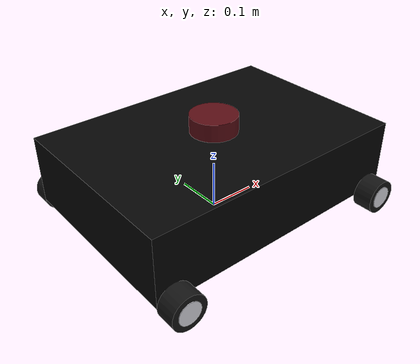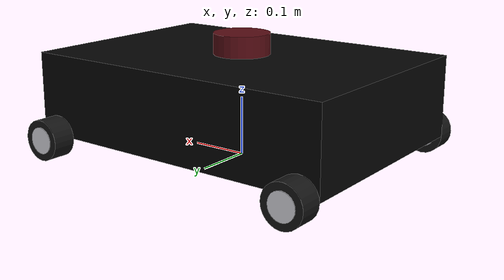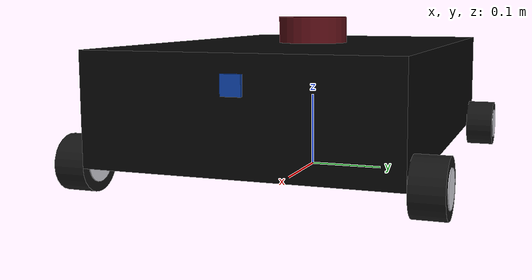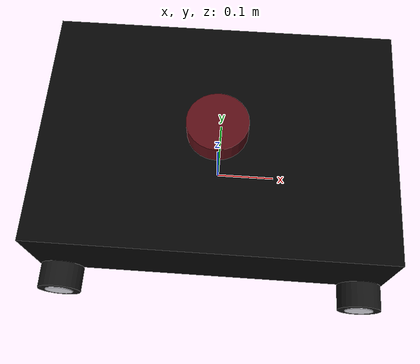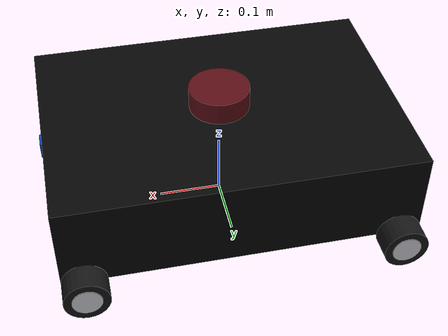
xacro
<?xml version="1.0" ?>
<robot name="robot" xmlns:xacro="http://www.ros.org/wiki/xacro">

<!-- ==================== GEOMETRY AND CONSTANTS ==================== -->
<xacro:property name="pi_const" value="3.14159265"/>

<!-- Body Dimensions -->
<xacro:property name="a" value="0.55663" />   <!-- length (x) -->
<xacro:property name="b" value="0.14044" />   <!-- height (z) -->
<xacro:property name="c" value="0.388"   />   <!-- width  (y) -->

<!-- Wheel Dimensions -->
<xacro:property name="r" value="0.035" />     <!-- wheel radius -->
<xacro:property name="d" value="0.04"  />     <!-- wheel thickness -->

<!-- Offsets -->
<xacro:property name="s1" value="${b/2+r}"/>         <!-- body center z above ground -->
<xacro:property name="s2" value="${a/2-r}"/>         <!-- wheel x offset from body center -->
<xacro:property name="s4" value="${c/2+d/2}"/>       <!-- wheel y offset (left/right) -->

<!-- Camera offsets - Mounted on front face -->
<xacro:property name="camera_x" value="${a/2}"/>           <!-- Front face of rover -->
<xacro:property name="camera_y" value="0"/>                <!-- Centered -->
<xacro:property name="camera_z" value="${b/4}"/>           <!-- Half height of rover -->

<!-- RPLIDAR A1 Dimensions - CORRECTED HEIGHT -->
<xacro:property name="lidar_height" value="0.042"/>        <!-- RPLIDAR A1 height (42mm) -->
<xacro:property name="lidar_radius" value="0.048"/>        <!-- RPLIDAR A1 radius (48mm) -->
<!-- Lidar at 0.15m above base_link to intersect obstacles at z=0.25-0.75 -->
<xacro:property name="lidar_mount_z" value="0.20"/>

<!-- Material Density -->
<xacro:property name="d1" value="2710.0"/>   <!-- body (aluminium) -->
<xacro:property name="d2" value="2710.0"/>   <!-- wheel -->

<!-- Mass -->
<xacro:property name="m1" value="${d1*a*b*c}"/>
<xacro:property name="m2" value="${d2*pi_const*r*r*d}"/>

<!-- Body Inertia -->
<xacro:property name="Ix_body" value="${(1/12)*m1*(b*b+c*c)}"/>
<xacro:property name="Iy_body" value="${(1/12)*m1*(a*a+b*b)}"/>
<xacro:property name="Iz_body" value="${(1/12)*m1*(a*a+c*c)}"/>

<!-- Wheel Inertia -->
<xacro:property name="Iz_wheel" value="${0.5*m2*r*r}"/>
<xacro:property name="I_wheel"  value="${(1.0/12.0)*m2*(3.0*r*r+d*d)}"/>

<!-- PREMIUM COLORS                                                -->
<xacro:property name="body_color" value="0.02 0.02 0.02 1.0"/>           <!-- Deep Black -->
<xacro:property name="body_metallic" value="0.05 0.05 0.05 1.0"/>        <!-- Satin Black -->

<!-- LIDAR - Deep Metallic Burgundy -->
<xacro:property name="lidar_color" value="0.35 0.05 0.08 1.0"/>          <!-- Deep Burgundy -->
<xacro:property name="lidar_top_color" value="0.12 0.12 0.12 1.0"/>      <!-- Dark Gunmetal -->

<!-- CAMERA - Bold Premium Blue -->
<xacro:property name="camera_color" value="0.05 0.25 0.65 1.0"/>         <!-- Bold Premium Blue -->

<!-- WHEELS - Premium Dark Alloy -->
<xacro:property name="wheel_color" value="0.08 0.08 0.08 1.0"/>          <!-- Dark Alloy -->
<xacro:property name="wheel_rim_color" value="0.85 0.85 0.88 1.0"/>      <!-- Premium Silver -->

<!-- Inertia macro: body -->
<xacro:macro name="inertia_body">
    <inertial>
        <origin rpy="0 0 0" xyz="0 0 0"/>
        <mass value="${m1}"/>
        <inertia ixx="${Ix_body}" ixy="0.0" ixz="0.0"
                 iyy="${Iy_body}" iyz="0.0"
                 izz="${Iz_body}"/>
    </inertial>
</xacro:macro>

<!-- Inertia macro: wheel -->
<xacro:macro name="inertia_wheel">
    <inertial>
        <origin rpy="1.5708 0 0" xyz="0 0 0"/>
        <mass value="${m2}"/>
        <inertia ixx="${Iz_wheel}" ixy="0.0" ixz="0.0"
                 iyy="${I_wheel}"  iyz="0.0"
                 izz="${I_wheel}"/>
    </inertial>
</xacro:macro>

<!-- ========== BASE ========== -->
<link name="base_footprint"/>

<joint name="base_joint" type="fixed">
    <parent link="base_footprint"/>
    <child  link="base_link"/>
    <origin xyz="0 0 ${s1}" rpy="0 0 0"/>
</joint>

<!-- ========== BASE LINK ========== -->
<link name="base_link">
    <visual>
        <origin rpy="0 0 0" xyz="0 0 0"/>
        <geometry>
            <box size="${a} ${c} ${b}"/>
        </geometry>
        <material name="body_material">
            <color rgba="${body_color}"/>
        </material>
    </visual>
    <collision>
        <origin rpy="0 0 0" xyz="0 0 0"/>
        <geometry>
            <box size="${a} ${c} ${b}"/>
        </geometry>
    </collision>
    <xacro:inertia_body/>
</link>

<!-- WHEELS                                                         -->

<!-- FRONT LEFT WHEEL -->
<joint name="front_left_wheel_joint" type="continuous">
    <parent link="base_link"/>
    <child  link="front_left_wheel"/>
    <origin xyz="${s2} ${s4} ${-b/2}" rpy="0 0 0"/>
    <axis xyz="0 1 0"/>
    <limit effort="50.0" velocity="10.0"/>
    <dynamics damping="0.1" friction="0.1"/>
</joint>

<link name="front_left_wheel">
    <visual name="tire">
        <origin rpy="1.5708 0 0" xyz="0 0 0"/>
        <geometry>
            <cylinder length="${d}" radius="${r}"/>
        </geometry>
        <material name="wheel_material">
            <color rgba="${wheel_color}"/>
        </material>
    </visual>
    <visual name="rim">
        <origin rpy="1.5708 0 0" xyz="0 0 0"/>
        <geometry>
            <cylinder length="${d + 0.002}" radius="${r * 0.65}"/>
        </geometry>
        <material name="wheel_rim_material">
            <color rgba="${wheel_rim_color}"/>
        </material>
    </visual>
    <collision>
        <origin rpy="1.5708 0 0" xyz="0 0 0"/>
        <geometry>
            <cylinder length="${d}" radius="${r}"/>
        </geometry>
    </collision>
    <xacro:inertia_wheel/>
</link>

<!-- FRONT RIGHT WHEEL -->
<joint name="front_right_wheel_joint" type="continuous">
    <parent link="base_link"/>
    <child  link="front_right_wheel"/>
    <origin xyz="${s2} ${-s4} ${-b/2}" rpy="0 0 0"/>
    <axis xyz="0 1 0"/>
    <limit effort="50.0" velocity="10.0"/>
    <dynamics damping="0.1" friction="0.1"/>
</joint>

<link name="front_right_wheel">
    <visual name="tire">
        <origin rpy="1.5708 0 0" xyz="0 0 0"/>
        <geometry>
            <cylinder length="${d}" radius="${r}"/>
        </geometry>
        <material name="wheel_material">
            <color rgba="${wheel_color}"/>
        </material>
    </visual>
    <visual name="rim">
        <origin rpy="1.5708 0 0" xyz="0 0 0"/>
        <geometry>
            <cylinder length="${d + 0.002}" radius="${r * 0.65}"/>
        </geometry>
        <material name="wheel_rim_material">
            <color rgba="${wheel_rim_color}"/>
        </material>
    </visual>
    <collision>
        <origin rpy="1.5708 0 0" xyz="0 0 0"/>
        <geometry>
            <cylinder length="${d}" radius="${r}"/>
        </geometry>
    </collision>
    <xacro:inertia_wheel/>
</link>

<!-- REAR LEFT WHEEL -->
<joint name="rear_left_wheel_joint" type="continuous">
    <parent link="base_link"/>
    <child  link="rear_left_wheel"/>
    <origin xyz="${-s2} ${s4} ${-b/2}" rpy="0 0 0"/>
    <axis xyz="0 1 0"/>
    <limit effort="50.0" velocity="10.0"/>
    <dynamics damping="0.1" friction="0.1"/>
</joint>

<link name="rear_left_wheel">
    <visual name="tire">
        <origin rpy="1.5708 0 0" xyz="0 0 0"/>
        <geometry>
            <cylinder length="${d}" radius="${r}"/>
        </geometry>
        <material name="wheel_material">
            <color rgba="${wheel_color}"/>
        </material>
    </visual>
    <visual name="rim">
        <origin rpy="1.5708 0 0" xyz="0 0 0"/>
        <geometry>
            <cylinder length="${d + 0.002}" radius="${r * 0.65}"/>
        </geometry>
        <material name="wheel_rim_material">
            <color rgba="${wheel_rim_color}"/>
        </material>
    </visual>
    <collision>
        <origin rpy="1.5708 0 0" xyz="0 0 0"/>
        <geometry>
            <cylinder length="${d}" radius="${r}"/>
        </geometry>
    </collision>
    <xacro:inertia_wheel/>
</link>

<!-- REAR RIGHT WHEEL -->
<joint name="rear_right_wheel_joint" type="continuous">
    <parent link="base_link"/>
    <child  link="rear_right_wheel"/>
    <origin xyz="${-s2} ${-s4} ${-b/2}" rpy="0 0 0"/>
    <axis xyz="0 1 0"/>
    <limit effort="50.0" velocity="10.0"/>
    <dynamics damping="0.1" friction="0.1"/>
</joint>

<link name="rear_right_wheel">
    <visual name="tire">
        <origin rpy="1.5708 0 0" xyz="0 0 0"/>
        <geometry>
            <cylinder length="${d}" radius="${r}"/>
        </geometry>
        <material name="wheel_material">
            <color rgba="${wheel_color}"/>
        </material>
    </visual>
    <visual name="rim">
        <origin rpy="1.5708 0 0" xyz="0 0 0"/>
        <geometry>
            <cylinder length="${d + 0.002}" radius="${r * 0.65}"/>
        </geometry>
        <material name="wheel_rim_material">
            <color rgba="${wheel_rim_color}"/>
        </material>
    </visual>
    <collision>
        <origin rpy="1.5708 0 0" xyz="0 0 0"/>
        <geometry>
            <cylinder length="${d}" radius="${r}"/>
        </geometry>
    </collision>
    <xacro:inertia_wheel/>
</link>

<!-- RPI CAMERA                                                     -->

<joint name="camera_joint" type="fixed">
    <parent link="base_link"/>
    <child  link="camera_link"/>
    <origin xyz="${camera_x} ${camera_y} ${camera_z}" rpy="0 1.5708 0"/>
</joint>

<link name="camera_link">
    <visual>
        <origin rpy="0 0 0" xyz="0 0 0"/>
        <geometry>
            <box size="0.025 0.025 0.009"/>
        </geometry>
        <material name="camera_material">
            <color rgba="${camera_color}"/>
        </material>
    </visual>
    <collision>
        <origin rpy="0 0 0" xyz="0 0 0"/>
        <geometry>
            <box size="0.025 0.025 0.009"/>
        </geometry>
    </collision>
    <inertial>
        <mass value="0.003"/>
        <origin xyz="0 0 0" rpy="0 0 0"/>
        <inertia ixx="0.000001" ixy="0" ixz="0"
                 iyy="0.000001" iyz="0"
                 izz="0.000001"/>
    </inertial>
</link>

<joint name="camera_optical_joint" type="fixed">
    <parent link="camera_link"/>
    <child  link="camera_optical_frame"/>
    <origin xyz="0 0 0.0045" rpy="-1.5708 0 -1.5708"/>
</joint>

<link name="camera_optical_frame"/>

<!-- RPLIDAR A1 - FIXED HEIGHT                                      -->
<!-- RPLIDAR A1 - CORRECTED HEIGHT                                  -->

<!-- Lidar joint - mounted higher -->
<!-- RPLIDAR A1 - CORRECTED: NOT HOVERING, RAYS FROM MIDDLE        -->

<!-- Lidar joint - mounted just above the rover body -->
<joint name="lidar_joint" type="fixed">
    <origin xyz="0 0 ${b/2 + 0.015}" rpy="0 0 0"/>  <!-- Just above body -->
    <parent link="base_link"/>
    <child link="lidar_link"/>
</joint>

<!-- Lidar visual -->
<link name="lidar_link">
    <visual name="lidar_body">
        <origin rpy="0 0 0" xyz="0 0 0"/>
        <geometry>
            <cylinder length="${lidar_height}" radius="${lidar_radius}"/>
        </geometry>
        <material name="lidar_material">
            <color rgba="${lidar_color}"/>
        </material>
    </visual>
    <visual name="lidar_top">
        <origin rpy="0 0 0" xyz="0 0 ${lidar_height/2 - 0.005}"/>
        <geometry>
            <cylinder length="0.005" radius="0.03"/>
        </geometry>
        <material name="lidar_top_material">
            <color rgba="${lidar_top_color}"/>
        </material>
    </visual>
    <collision>
        <origin rpy="0 0 0" xyz="0 0 0"/>
        <geometry>
            <cylinder length="${lidar_height}" radius="${lidar_radius}"/>
        </geometry>
    </collision>
    <inertial>
        <mass value="0.17"/>
        <origin xyz="0 0 0" rpy="0 0 0"/>
        <inertia ixx="0.0001" ixy="0" ixz="0"
                 iyy="0.0001" iyz="0"
                 izz="0.0001"/>
    </inertial>
</link>

<!-- GAZEBO LIDAR SENSOR - RAYS FROM MIDDLE OF LIDAR               -->

<gazebo reference="lidar_link">
    <sensor name="gpu_lidar" type="gpu_lidar">
        <!-- Rays from the center of the lidar (NOT the top) -->
        <pose>0 0 ${lidar_height/4} 0 0 0</pose>
        <always_on>true</always_on>
        <visualize>true</visualize>
        <update_rate>10</update_rate>
        <topic>scan</topic>

        <lidar>
            <scan>
                <horizontal>
                    <samples>720</samples>
                    <resolution>1</resolution>
                    <min_angle>-3.14159</min_angle>
                    <max_angle>3.14159</max_angle>
                </horizontal>
                <vertical>
                    <samples>1</samples>
                    <resolution>0.01</resolution>
                    <min_angle>0</min_angle>
                    <max_angle>0</max_angle>
                </vertical>
            </scan>
            <range>
                <min>0.05</min>
                <max>12.0</max>
                <resolution>0.01</resolution>
            </range>
            <noise>
                <type>gaussian</type>
                <mean>0.0</mean>
                <stddev>0.001</stddev>
            </noise>
        </lidar>
    </sensor>
</gazebo>

<!-- GAZEBO CONFIGURATIONS                                          -->

<gazebo reference="front_left_wheel">
    <mu1>0.8</mu1>
    <mu2>0.05</mu2>
    <kp>1000000.0</kp>
    <kd>100.0</kd>
    <minDepth>0.001</minDepth>
    <material>Gazebo/DarkGrey</material>
</gazebo>

<gazebo reference="front_right_wheel">
    <mu1>0.8</mu1>
    <mu2>0.05</mu2>
    <kp>1000000.0</kp>
    <kd>100.0</kd>
    <minDepth>0.001</minDepth>
    <material>Gazebo/DarkGrey</material>
</gazebo>

<gazebo reference="rear_left_wheel">
    <mu1>0.8</mu1>
    <mu2>0.05</mu2>
    <kp>1000000.0</kp>
    <kd>100.0</kd>
    <minDepth>0.001</minDepth>
    <material>Gazebo/DarkGrey</material>
</gazebo>

<gazebo reference="rear_right_wheel">
    <mu1>0.8</mu1>
    <mu2>0.05</mu2>
    <kp>1000000.0</kp>
    <kd>100.0</kd>
    <minDepth>0.001</minDepth>
    <material>Gazebo/DarkGrey</material>
</gazebo>

<gazebo reference="base_link">
    <mu1>0.2</mu1>
    <mu2>0.2</mu2>
    <material>Gazebo/Black</material>
</gazebo>

<!-- SENSORS SYSTEM PLUGIN                                         -->

<gazebo>
    <plugin
        filename="gz-sim-sensors-system"
        name="gz::sim::systems::Sensors">
        <render_engine>ogre2</render_engine>
    </plugin>
</gazebo>

</robot>
